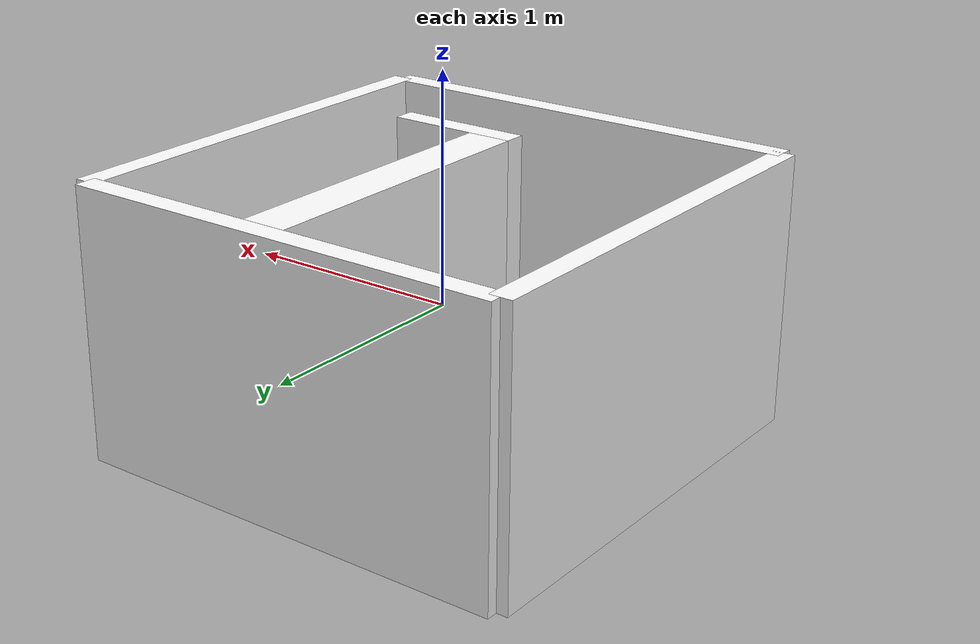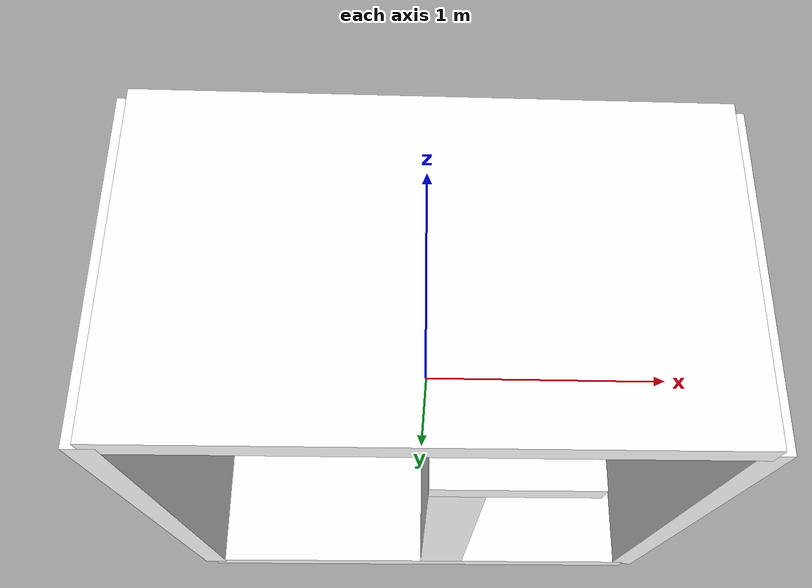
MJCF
<mujoco model="pointmass">
   <compiler inertiafromgeom="true" angle="radian" coordinate="local" />
   <option timestep="0.01" gravity="0 0 0" iterations="100" integrator="Euler" />
   <default>
      <joint armature="0.004" damping="10" limited="true" />
      <geom friction=".5 .1 .1" margin="0.002" condim="1" contype="1" conaffinity="1" rgba="1.0 0.25 0.22 1" />
   </default>

   <worldbody>
		<light diffuse=".5 .5 .5" pos="0 0 3" dir="0 0 -1"/>

      <!-- cameras -->
      <camera name="ebm_custom" pos="0 0 2" quat='1 0 0 0' fovy='60'/>

		<body name="robot" pos="0 0 0">
			<geom name="robot_geom"  type="sphere" rgba="0.6 0.6 0.6 1" pos="-0.1 0 0" size="0.05" />
         <site name="site_pm" type="sphere" rgba="1 0 0 0.5" pos="-0.1 0 0" size="0.1" />

			<joint name="robot_joint_x" type="slide" pos="0 0 0" axis="1 0 0" range="-1 1" />
			<joint name="robot_joint_y" type="slide" pos="0 0 0" axis="0 1 0" range="-1 1" />
		</body>

      <!-- walls for rooms -->
      <geom name="wall_1"  type="box" rgba="1 1 1 1" pos="-1 0 0" size="0.05 1.0 0.6" />
      <geom name="wall_2"  type="box" rgba="1 1 1 1" pos="1 0 0" size="0.05 1.0 0.6" />
      <geom name="wall_3"  type="box" rgba="1 1 1 1" pos="0 1.0 0" size="1.0 0.05 0.6" />
      <geom name="wall_4"  type="box" rgba="1 1 1 1" pos="0 -1.0 0" size="1.0 0.05 0.6" />

      <geom name="wall_5"  type="box" rgba="1 1 1 1" pos="0.1 0.25 0" size="0.1 0.7 0.6" />
      <geom name="wall_6"  type="box" rgba="1 1 1 1" pos="0.3 -0.5 0" size="0.3 0.05 0.6" />

		<site name="target" type="sphere" rgba="0 1 0 1" pos="0.5 0.5 0" size="0.05" />
    </worldbody>

   <actuator>
      <position name="actuator_x" joint="robot_joint_x" ctrlrange="-1   1" kp="100"/>
      <position name="actuator_y" joint="robot_joint_y" ctrlrange="-1   1" kp="100"/>
   </actuator>
</mujoco>
